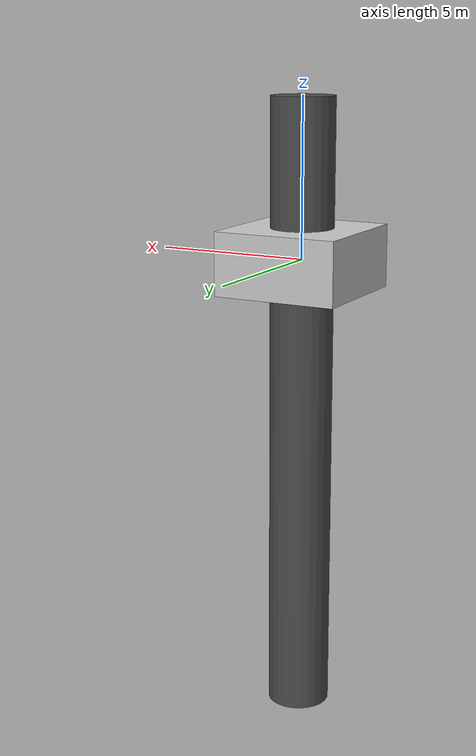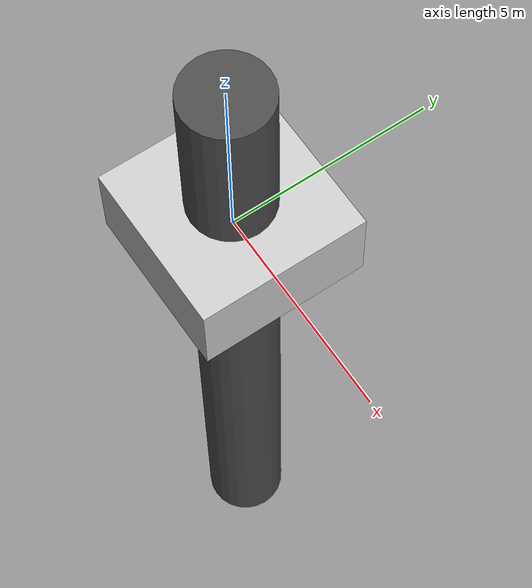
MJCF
<mujoco>
  <option gravity="0 0 -9.81" />
  <worldbody>
    <body name="object_1" pos="0 0 0">
      <geom type="box" size="2 2 1" rgba="0.8 0.8 0.8 1" />
      <joint name="object_1_joint" type="slide" axis="0 0 1" />
    </body>
    <body name="object_2" pos="0 0 1">
      <geom type="box" size="0.5 0.5 0.5" density="1" rgba="1 0 0 1" />
    </body>
    <body name="object_3" pos="0 0 -0.5">
      <geom type="box" size="0.5 0.5 0.1" rgba="0.7 0.7 0.7 1" />
    </body>
    <body name="object_4" pos="0 0 -5">
      <geom type="cylinder" size="1 10" rgba="0.3 0.3 0.3 1" />
    </body>
  </worldbody>
<joint name="joint_object_1_object_3" type="revolute" body1="object_1" body2="object_3" /><joint name="joint_object_1_object_3" type="revolute" body1="object_1" body2="object_3" /></mujoco>
